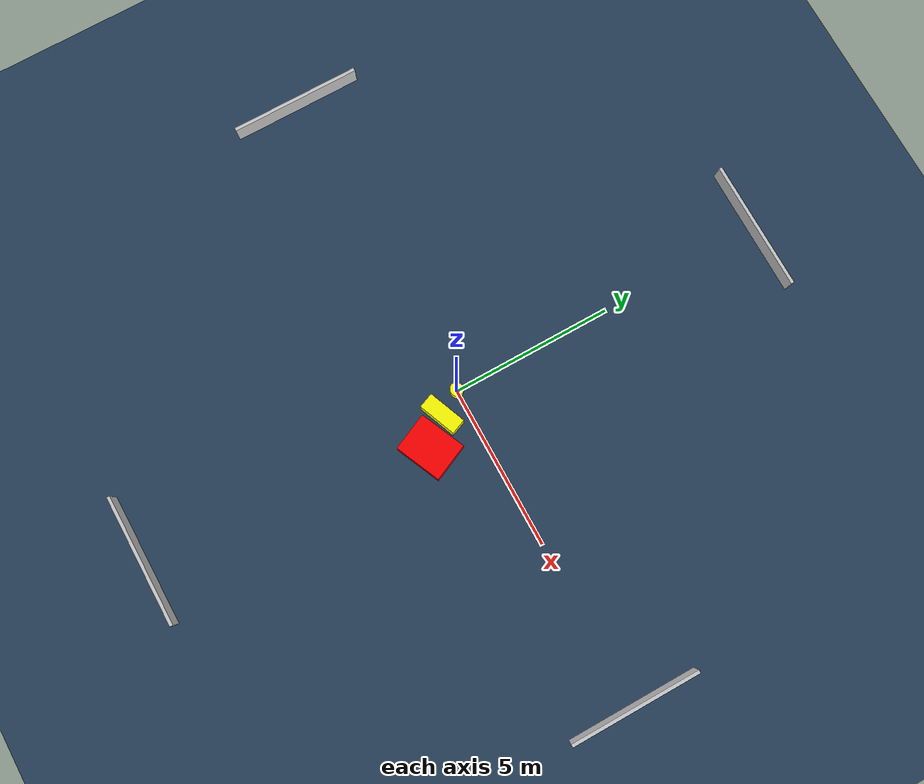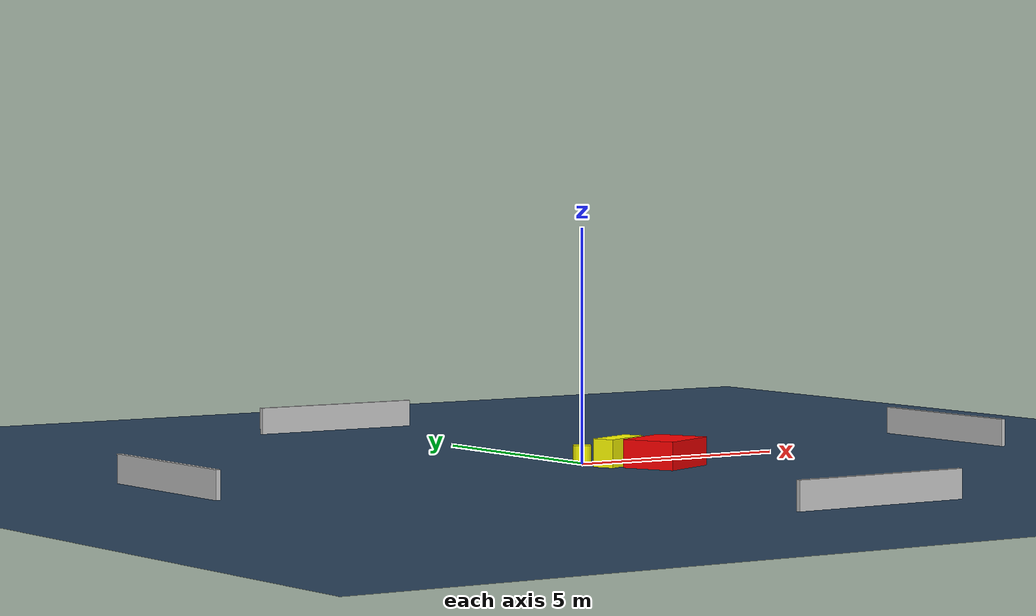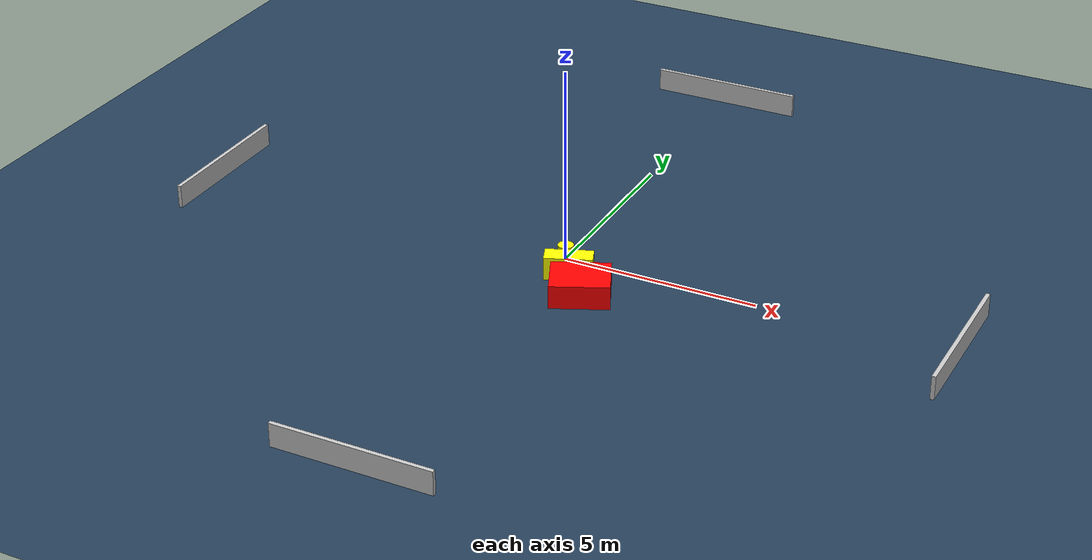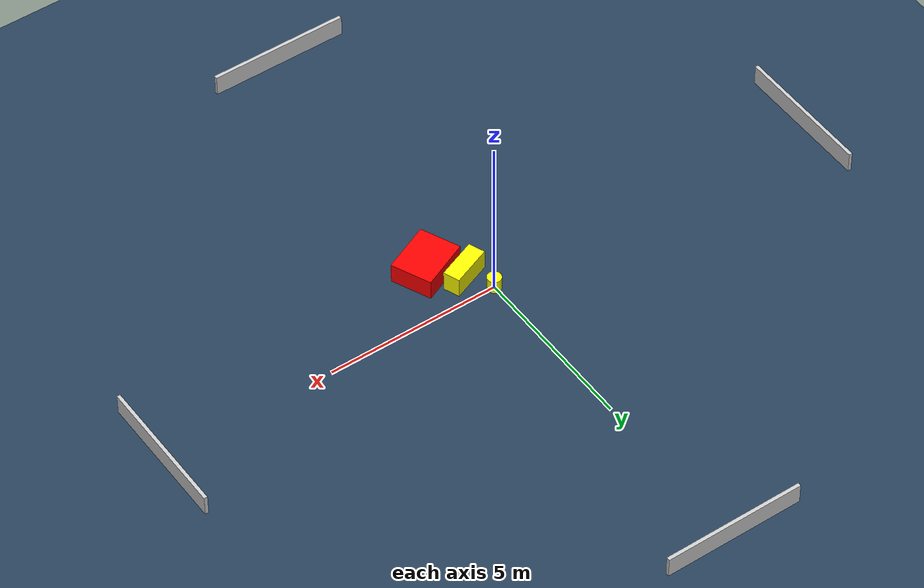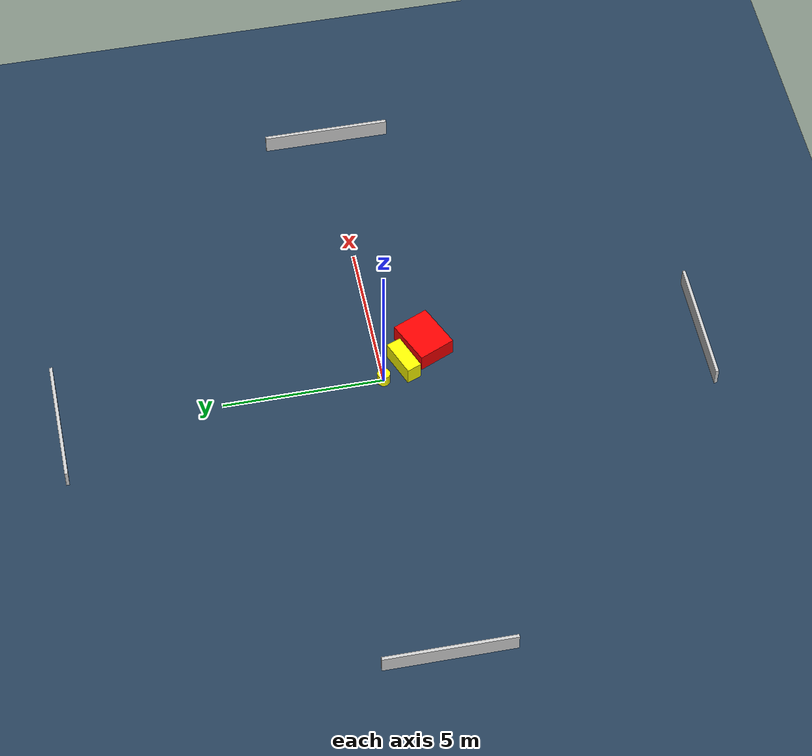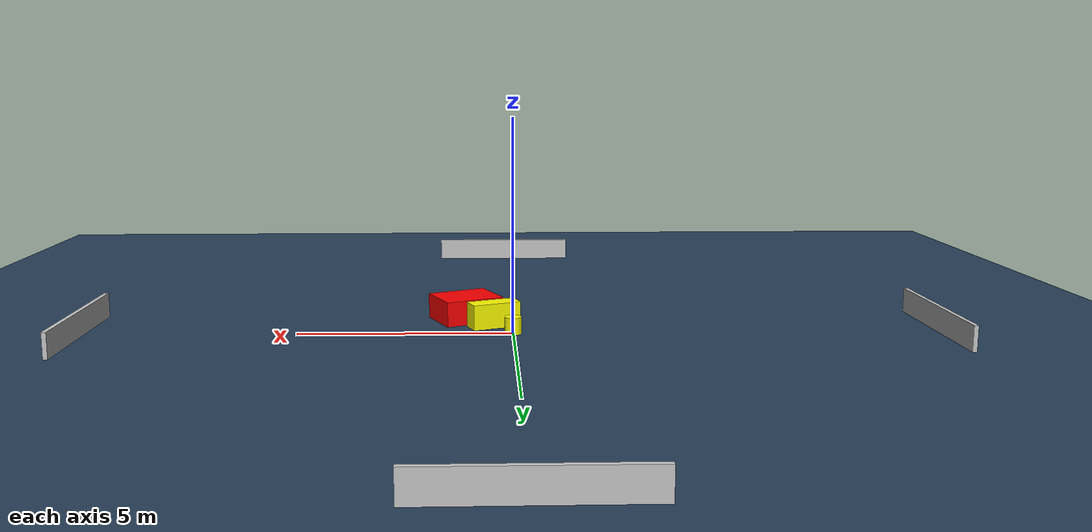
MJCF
<?xml version="1.0" ?>
<mujoco model="generated_environment">
  <option timestep="0.01" integrator="RK4" cone="elliptic"/>
  <default>
    <geom density="1"/>
  </default>
  <asset>
    <texture builtin="gradient" height="3072" name="skybox" rgb1="0.3 0.5 0.7" rgb2="0 0 0" type="skybox" width="512"/>
    <texture builtin="checker" height="300" name="groundplane" rgb1="0.2 0.3 0.4" rgb2="0.1 0.2 0.3" type="2d" width="300"/>
    <material name="groundplane" reflectance="0.2" texrepeat="5 5" texture="groundplane"/>
  </asset>
  <worldbody>
    <light dir="0 0 -1" directional="true" pos="0 0 1.5"/>
    <geom condim="3" friction="0.5 0.005 0.001" material="groundplane" name="floor" pos="0 0 0" size="0 0 0.05" type="plane"/>
    <body name="walls">
      <geom name="wall_1" condim="4" pos="-10.0 0.0 0.3" rgba="0.800000011920929 0.800000011920929 0.800000011920929 1.0" size="0.05 2.0 0.3" type="box"/>
      <geom name="wall_2" condim="4" pos="10.0 0.0 0.3" rgba="0.800000011920929 0.800000011920929 0.800000011920929 1.0" size="0.05 2.0 0.3" type="box"/>
      <geom name="wall_3" condim="4" pos="0.0 -10.0 0.3" rgba="0.800000011920929 0.800000011920929 0.800000011920929 1.0" size="2.0 0.05 0.3" type="box"/>
      <geom name="wall_4" condim="4" pos="0.0 10.0 0.3" rgba="0.800000011920929 0.800000011920929 0.800000011920929 1.0" size="2.0 0.05 0.3" type="box"/>
    </body>
    <body name="robot">
      <joint name="joint_x" type="slide" pos="0 0 0" axis="1 0 0"/>
      <joint name="joint_y" type="slide" pos="0 0 0" axis="0 1 0"/>
      <geom name="robot" type="cylinder" pos="0.0 0.0 0.2" size="0.2 0.2 0.0" mass="5.0" friction="1.0 0.005 0.0001" condim="4" rgba="1.0 1.0 0.0 1.0"/>
    </body>
    <body name="obstacle_1_movable">
      <geom name="obstacle_1_movable" condim="4" pos="0.439841785146981 -0.7140556448327732 0.3" euler="0 0 201.77830744830192" friction="0.0 0.005 0.001" rgba="1.0 1.0 0.0 1.0" size="0.5973910363571534 0.2388210787904625 0.3" type="box" mass="0.1"/>
      <joint type="free"/>
    </body>
    <body name="obstacle_2_static">
      <geom name="obstacle_2_static" condim="4" pos="1.113194409016733 -1.464483738915248 0.3" euler="0 0 204.1140398358471" friction="0.0 0.005 0.001" rgba="1.0 0.0 0.0 1.0" size="0.7305491351941082 0.593724142748959 0.3" type="box"/>
    </body>
  </worldbody>
  <actuator>
    <motor name="actuator_x" joint="joint_x" gear="1" ctrlrange="-1 1"/>
    <motor name="actuator_y" joint="joint_y" gear="1" ctrlrange="-1 1"/>
  </actuator>
</mujoco>
